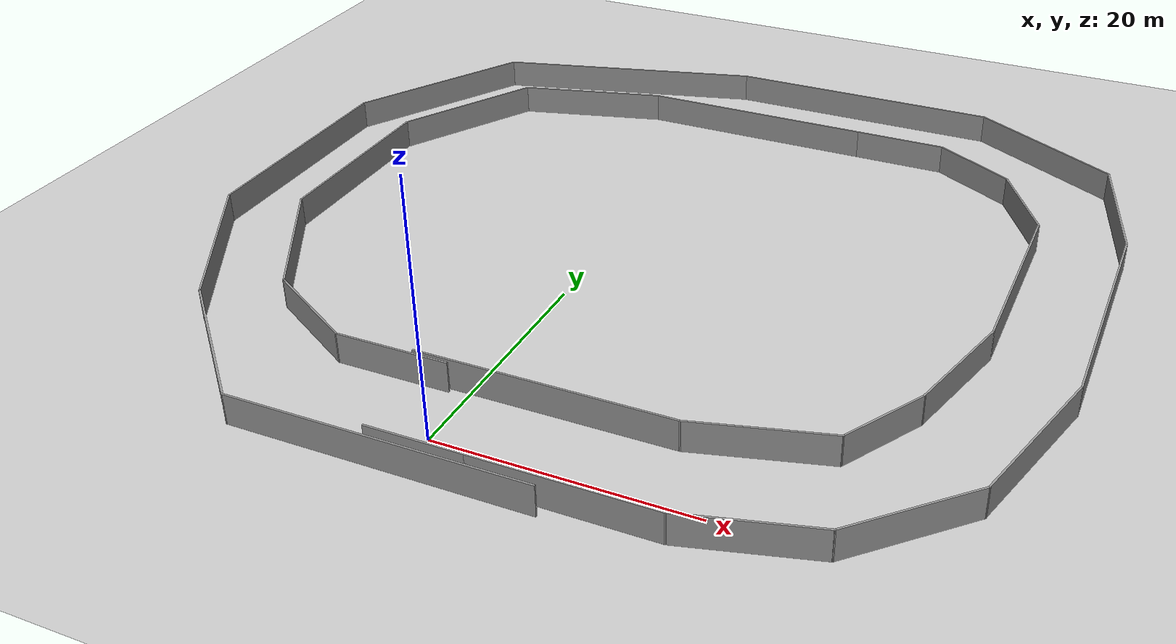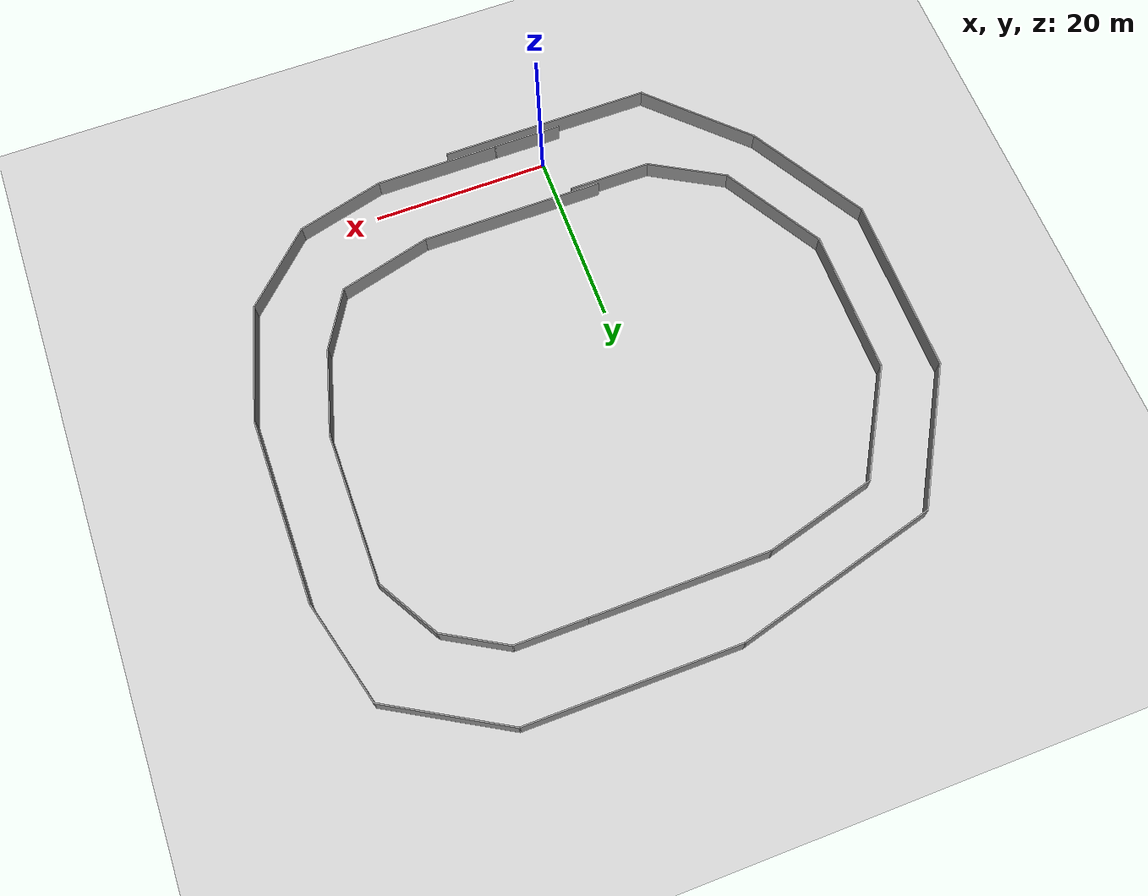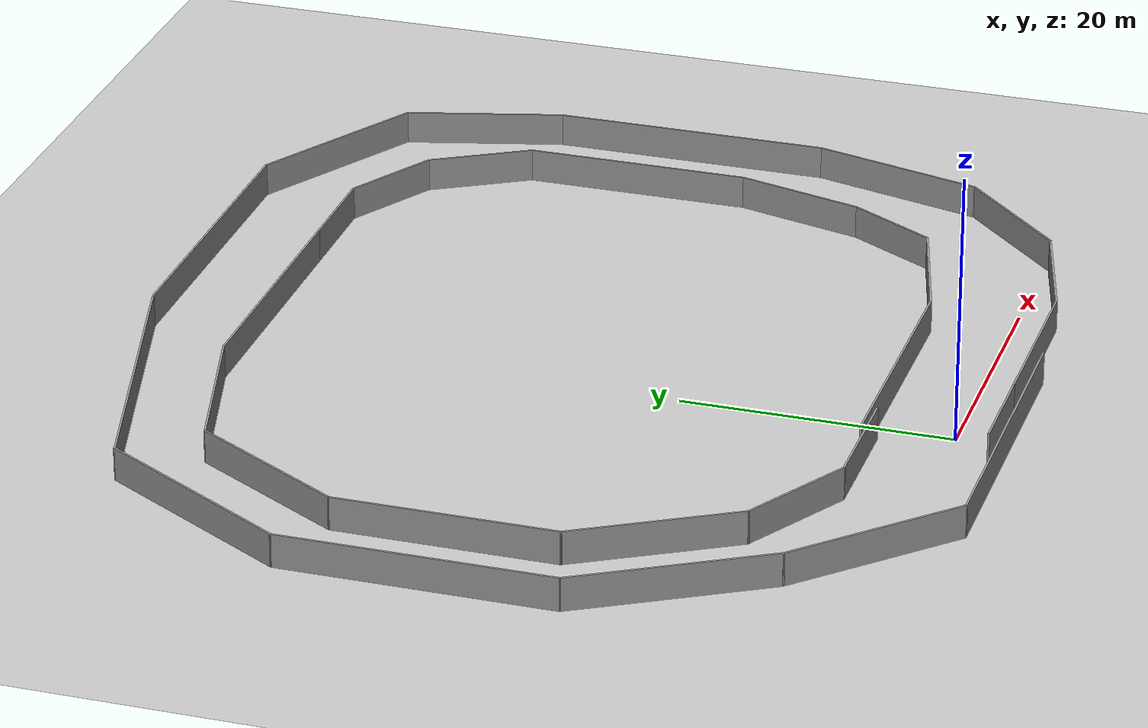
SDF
<sdf version="1.7">
 <world name="default">
  <light name="sun" type="directional">
   <pose>0 0 10 0 -0 0</pose>
   <diffuse>0.8 0.8 0.8 1</diffuse>
   <specular>0.2 0.2 0.2 1</specular>
   <attenuation>
    <range>1000</range>
    <constant>0.9</constant>
    <linear>0.01</linear>
    <quadratic>0.001</quadratic>
   </attenuation>
   <direction>-0.5 0.1 -0.9</direction>
   <spot><inner_angle>0</inner_angle><outer_angle>0</outer_angle><falloff>0</falloff></spot>
  </light>
  <model name="ground_plane">
   <static>1</static>
   <link name="link">
    <collision name="collision">
     <geometry><plane><normal>0 0 1</normal><size>100 100</size></plane></geometry>
     <surface>
      <contact><collide_bitmask>65535</collide_bitmask></contact>
      <friction><ode><mu>100</mu><mu2>50</mu2></ode></friction>
     </surface>
    </collision>
    <visual name="visual">
     <cast_shadows>0</cast_shadows>
     <geometry><plane><normal>0 0 1</normal><size>100 100</size></plane></geometry>
     <material>
      <script><uri>file://media/materials/scripts/gazebo.material</uri><name>Gazebo/Grey</name></script>
     </material>
    </visual>
   </link>
  </model>
  <gravity>0 0 -9.8</gravity>
  <magnetic_field>6e-06 2.3e-05 -4.2e-05</magnetic_field>
  <atmosphere type="adiabatic"/>
  <physics type="ode">
   <max_step_size>0.001</max_step_size>
   <real_time_factor>1</real_time_factor>
   <real_time_update_rate>1000</real_time_update_rate>
  </physics>
  <scene><ambient>0.4 0.4 0.4 1</ambient><background>0.7 0.7 0.7 1</background><shadows>1</shadows></scene>
  <spherical_coordinates>
   <surface_model>EARTH_WGS84</surface_model>
   <latitude_deg>0</latitude_deg>
   <longitude_deg>0</longitude_deg>
   <elevation>0</elevation>
   <heading_deg>0</heading_deg>
  </spherical_coordinates>
  <model name="Untitled">
   <pose>4.14361 27.9397 0 0 -0 0</pose>
   <link name="Wall_0">
    <collision name="Wall_0_Collision">
     <geometry><box><size>7.75 0.15 2.5</size></box></geometry>
     <pose>0 0 1.25 0 -0 0</pose>
    </collision>
    <visual name="Wall_0_Visual">
     <pose>0 0 1.25 0 -0 0</pose>
     <geometry><box><size>7.75 0.15 2.5</size></box></geometry>
     <material>
      <script><uri>file://media/materials/scripts/gazebo.material</uri><name>Gazebo/Grey</name></script>
      <ambient>1 1 1 1</ambient>
     </material>
     <meta><layer>0</layer></meta>
    </visual>
    <pose>-3.22361 -30.8997 0 0 -0 0</pose>
   </link>
   <link name="Wall_10">
    <collision name="Wall_10_Collision">
     <geometry><box><size>23.75 0.15 2.5</size></box></geometry>
     <pose>0 0 1.25 0 -0 0</pose>
    </collision>
    <visual name="Wall_10_Visual">
     <pose>0 0 1.25 0 -0 0</pose>
     <geometry><box><size>23.75 0.15 2.5</size></box></geometry>
     <material>
      <script><uri>file://media/materials/scripts/gazebo.material</uri><name>Gazebo/Grey</name></script>
      <ambient>1 1 1 1</ambient>
     </material>
     <meta><layer>0</layer></meta>
    </visual>
    <pose>-15.4243 28.7634 0 0 -0 -2.87979</pose>
   </link>
   <link name="Wall_11">
    <collision name="Wall_11_Collision">
     <geometry><box><size>16.75 0.15 2.5</size></box></geometry>
     <pose>0 0 1.25 0 -0 0</pose>
    </collision>
    <visual name="Wall_11_Visual">
     <pose>0 0 1.25 0 -0 0</pose>
     <geometry><box><size>16.75 0.15 2.5</size></box></geometry>
     <material>
      <script><uri>file://media/materials/scripts/gazebo.material</uri><name>Gazebo/Grey</name></script>
      <ambient>1 1 1 1</ambient>
     </material>
     <meta><layer>0</layer></meta>
    </visual>
    <pose>-30.9722 18.5213 0 0 -0 -2.0944</pose>
   </link>
   <link name="Wall_12">
    <collision name="Wall_12_Collision">
     <geometry><box><size>20.25 0.15 2.5</size></box></geometry>
     <pose>0 0 1.25 0 -0 0</pose>
    </collision>
    <visual name="Wall_12_Visual">
     <pose>0 0 1.25 0 -0 0</pose>
     <geometry><box><size>20.25 0.15 2.5</size></box></geometry>
     <material>
      <script><uri>file://media/materials/scripts/gazebo.material</uri><name>Gazebo/Grey</name></script>
      <ambient>1 1 1 1</ambient>
     </material>
     <meta><layer>0</layer></meta>
    </visual>
    <pose>-35.1222 1.28333 0 0 -0 -1.5708</pose>
   </link>
   <link name="Wall_13">
    <collision name="Wall_13_Collision">
     <geometry><box><size>15.25 0.15 2.5</size></box></geometry>
     <pose>0 0 1.25 0 -0 0</pose>
    </collision>
    <visual name="Wall_13_Visual">
     <pose>0 0 1.25 0 -0 0</pose>
     <geometry><box><size>15.25 0.15 2.5</size></box></geometry>
     <material>
      <script><uri>file://media/materials/scripts/gazebo.material</uri><name>Gazebo/Grey</name></script>
      <ambient>1 1 1 1</ambient>
     </material>
     <meta><layer>0</layer></meta>
    </visual>
    <pose>-31.3472 -15.3052 0 0 -0 -1.0472</pose>
   </link>
   <link name="Wall_14">
    <collision name="Wall_14_Collision">
     <geometry><box><size>14.25 0.15 2.5</size></box></geometry>
     <pose>0 0 1.25 0 -0 0</pose>
    </collision>
    <visual name="Wall_14_Visual">
     <pose>0 0 1.25 0 -0 0</pose>
     <geometry><box><size>14.25 0.15 2.5</size></box></geometry>
     <material>
      <script><uri>file://media/materials/scripts/gazebo.material</uri><name>Gazebo/Grey</name></script>
      <ambient>1 1 1 1</ambient>
     </material>
     <meta><layer>0</layer></meta>
    </visual>
    <pose>-22.5871 -26.8288 0 0 -0 -0.785398</pose>
   </link>
   <link name="Wall_15">
    <collision name="Wall_15_Collision">
     <geometry><box><size>23.75 0.15 2.5</size></box></geometry>
     <pose>0 0 1.25 0 -0 0</pose>
    </collision>
    <visual name="Wall_15_Visual">
     <pose>0 0 1.25 0 -0 0</pose>
     <geometry><box><size>23.75 0.15 2.5</size></box></geometry>
     <material>
      <script><uri>file://media/materials/scripts/gazebo.material</uri><name>Gazebo/Grey</name></script>
      <ambient>1 1 1 1</ambient>
     </material>
     <meta><layer>0</layer></meta>
    </visual>
    <pose>-5.80201 -31.8139 0 0 -0 0</pose>
   </link>
   <link name="Wall_17">
    <collision name="Wall_17_Collision">
     <geometry><box><size>20.5 0.15 2.5</size></box></geometry>
     <pose>0 0 1.25 0 -0 0</pose>
    </collision>
    <visual name="Wall_17_Visual">
     <pose>0 0 1.25 0 -0 0</pose>
     <geometry><box><size>20.5 0.15 2.5</size></box></geometry>
     <material>
      <script><uri>file://media/materials/scripts/gazebo.material</uri><name>Gazebo/Grey</name></script>
      <ambient>1 1 1 1</ambient>
     </material>
     <meta><layer>0</layer></meta>
    </visual>
    <pose>1.52837 -22.2322 0 0 -0 0</pose>
   </link>
   <link name="Wall_18">
    <collision name="Wall_18_Collision">
     <geometry><box><size>10.75 0.15 2.5</size></box></geometry>
     <pose>0 0 1.25 0 -0 0</pose>
    </collision>
    <visual name="Wall_18_Visual">
     <pose>0 0 1.25 0 -0 0</pose>
     <geometry><box><size>10.75 0.15 2.5</size></box></geometry>
     <material>
      <script><uri>file://media/materials/scripts/gazebo.material</uri><name>Gazebo/Grey</name></script>
      <ambient>1 1 1 1</ambient>
     </material>
     <meta><layer>0</layer></meta>
    </visual>
    <pose>16.8228 -20.8604 0 0 -0 0.261799</pose>
   </link>
   <link name="Wall_19">
    <collision name="Wall_19_Collision">
     <geometry><box><size>7.5 0.15 2.5</size></box></geometry>
     <pose>0 0 1.25 0 -0 0</pose>
    </collision>
    <visual name="Wall_19_Visual">
     <pose>0 0 1.25 0 -0 0</pose>
     <geometry><box><size>7.5 0.15 2.5</size></box></geometry>
     <material>
      <script><uri>file://media/materials/scripts/gazebo.material</uri><name>Gazebo/Grey</name></script>
      <ambient>1 1 1 1</ambient>
     </material>
     <meta><layer>0</layer></meta>
    </visual>
    <pose>23.7797 -16.306 0 0 -0 1.0472</pose>
   </link>
   <link name="Wall_2">
    <collision name="Wall_2_Collision">
     <geometry><box><size>14 0.15 2.5</size></box></geometry>
     <pose>0 0 1.25 0 -0 0</pose>
    </collision>
    <visual name="Wall_2_Visual">
     <pose>0 0 1.25 0 -0 0</pose>
     <geometry><box><size>14 0.15 2.5</size></box></geometry>
     <material>
      <script><uri>file://media/materials/scripts/gazebo.material</uri><name>Gazebo/Grey</name></script>
      <ambient>1 1 1 1</ambient>
     </material>
     <meta><layer>0</layer></meta>
    </visual>
    <pose>7.50139 -30.8997 0 0 -0 0</pose>
   </link>
   <link name="Wall_20">
    <collision name="Wall_20_Collision">
     <geometry><box><size>10 0.15 2.5</size></box></geometry>
     <pose>0 0 1.25 0 -0 0</pose>
    </collision>
    <visual name="Wall_20_Visual">
     <pose>0 0 1.25 0 -0 0</pose>
     <geometry><box><size>10 0.15 2.5</size></box></geometry>
     <material>
      <script><uri>file://media/materials/scripts/gazebo.material</uri><name>Gazebo/Grey</name></script>
      <ambient>1 1 1 1</ambient>
     </material>
     <meta><layer>0</layer></meta>
    </visual>
    <pose>26.8919 -8.36622 0 0 -0 1.309</pose>
   </link>
   <link name="Wall_21">
    <collision name="Wall_21_Collision">
     <geometry><box><size>17 0.15 2.5</size></box></geometry>
     <pose>0 0 1.25 0 -0 0</pose>
    </collision>
    <visual name="Wall_21_Visual">
     <pose>0 0 1.25 0 -0 0</pose>
     <geometry><box><size>17 0.15 2.5</size></box></geometry>
     <material>
      <script><uri>file://media/materials/scripts/gazebo.material</uri><name>Gazebo/Grey</name></script>
      <ambient>1 1 1 1</ambient>
     </material>
     <meta><layer>0</layer></meta>
    </visual>
    <pose>28.1666 4.81597 0 0 -0 1.5708</pose>
   </link>
   <link name="Wall_22">
    <collision name="Wall_22_Collision">
     <geometry><box><size>8.25 0.15 2.5</size></box></geometry>
     <pose>0 0 1.25 0 -0 0</pose>
    </collision>
    <visual name="Wall_22_Visual">
     <pose>0 0 1.25 0 -0 0</pose>
     <geometry><box><size>8.25 0.15 2.5</size></box></geometry>
     <material>
      <script><uri>file://media/materials/scripts/gazebo.material</uri><name>Gazebo/Grey</name></script>
      <ambient>1 1 1 1</ambient>
     </material>
     <meta><layer>0</layer></meta>
    </visual>
    <pose>26.1416 16.7484 0 0 -0 2.0944</pose>
   </link>
   <link name="Wall_23">
    <collision name="Wall_23_Collision">
     <geometry><box><size>7.75 0.15 2.5</size></box></geometry>
     <pose>0 0 1.25 0 -0 0</pose>
    </collision>
    <visual name="Wall_23_Visual">
     <pose>0 0 1.25 0 -0 0</pose>
     <geometry><box><size>7.75 0.15 2.5</size></box></geometry>
     <material>
      <script><uri>file://media/materials/scripts/gazebo.material</uri><name>Gazebo/Grey</name></script>
      <ambient>1 1 1 1</ambient>
     </material>
     <meta><layer>0</layer></meta>
    </visual>
    <pose>20.8257 22.1558 0 0 -0 2.61799</pose>
   </link>
   <link name="Wall_24">
    <collision name="Wall_24_Collision">
     <geometry><box><size>8 0.15 2.5</size></box></geometry>
     <pose>0 0 1.25 0 -0 0</pose>
    </collision>
    <visual name="Wall_24_Visual">
     <pose>0 0 1.25 0 -0 0</pose>
     <geometry><box><size>8 0.15 2.5</size></box></geometry>
     <material>
      <script><uri>file://media/materials/scripts/gazebo.material</uri><name>Gazebo/Grey</name></script>
      <ambient>1 1 1 1</ambient>
     </material>
     <meta><layer>0</layer></meta>
    </visual>
    <pose>13.6098 24.0558 0 0 -0 3.14159</pose>
   </link>
   <link name="Wall_25">
    <collision name="Wall_25_Collision">
     <geometry><box><size>20 0.15 2.5</size></box></geometry>
     <pose>0 0 1.25 0 -0 0</pose>
    </collision>
    <visual name="Wall_25_Visual">
     <pose>0 0 1.25 0 -0 0</pose>
     <geometry><box><size>20 0.15 2.5</size></box></geometry>
     <material>
      <script><uri>file://media/materials/scripts/gazebo.material</uri><name>Gazebo/Grey</name></script>
      <ambient>1 1 1 1</ambient>
     </material>
     <meta><layer>0</layer></meta>
    </visual>
    <pose>-0.240241 24.0558 0 0 -0 3.14159</pose>
   </link>
   <link name="Wall_26">
    <collision name="Wall_26_Collision">
     <geometry><box><size>13 0.15 2.5</size></box></geometry>
     <pose>0 0 1.25 0 -0 0</pose>
    </collision>
    <visual name="Wall_26_Visual">
     <pose>0 0 1.25 0 -0 0</pose>
     <geometry><box><size>13 0.15 2.5</size></box></geometry>
     <material>
      <script><uri>file://media/materials/scripts/gazebo.material</uri><name>Gazebo/Grey</name></script>
      <ambient>1 1 1 1</ambient>
     </material>
     <meta><layer>0</layer></meta>
    </visual>
    <pose>-16.3713 22.3929 0 0 -0 -2.87979</pose>
   </link>
   <link name="Wall_27">
    <collision name="Wall_27_Collision">
     <geometry><box><size>13.25 0.15 2.5</size></box></geometry>
     <pose>0 0 1.25 0 -0 0</pose>
    </collision>
    <visual name="Wall_27_Visual">
     <pose>0 0 1.25 0 -0 0</pose>
     <geometry><box><size>13.25 0.15 2.5</size></box></geometry>
     <material>
      <script><uri>file://media/materials/scripts/gazebo.material</uri><name>Gazebo/Grey</name></script>
      <ambient>1 1 1 1</ambient>
     </material>
     <meta><layer>0</layer></meta>
    </visual>
    <pose>-25.8524 15.0575 0 0 -0 -2.0944</pose>
   </link>
   <link name="Wall_28">
    <collision name="Wall_28_Collision">
     <geometry><box><size>16.5 0.15 2.5</size></box></geometry>
     <pose>0 0 1.25 0 -0 0</pose>
    </collision>
    <visual name="Wall_28_Visual">
     <pose>0 0 1.25 0 -0 0</pose>
     <geometry><box><size>16.5 0.15 2.5</size></box></geometry>
     <material>
      <script><uri>file://media/materials/scripts/gazebo.material</uri><name>Gazebo/Grey</name></script>
      <ambient>1 1 1 1</ambient>
     </material>
     <meta><layer>0</layer></meta>
    </visual>
    <pose>-29.1274 1.21002 0 0 -0 -1.5708</pose>
   </link>
   <link name="Wall_29">
    <collision name="Wall_29_Collision">
     <geometry><box><size>13 0.15 2.5</size></box></geometry>
     <pose>0 0 1.25 0 -0 0</pose>
    </collision>
    <visual name="Wall_29_Visual">
     <pose>0 0 1.25 0 -0 0</pose>
     <geometry><box><size>13 0.15 2.5</size></box></geometry>
     <material>
      <script><uri>file://media/materials/scripts/gazebo.material</uri><name>Gazebo/Grey</name></script>
      <ambient>1 1 1 1</ambient>
     </material>
     <meta><layer>0</layer></meta>
    </visual>
    <pose>-25.9149 -12.5292 0 0 -0 -1.0472</pose>
   </link>
   <link name="Wall_3">
    <collision name="Wall_3_Collision">
     <geometry><box><size>10.25 0.15 2.5</size></box></geometry>
     <pose>0 0 1.25 0 -0 0</pose>
    </collision>
    <visual name="Wall_3_Visual">
     <pose>0 0 1.25 0 -0 0</pose>
     <geometry><box><size>10.25 0.15 2.5</size></box></geometry>
     <material>
      <script><uri>file://media/materials/scripts/gazebo.material</uri><name>Gazebo/Grey</name></script>
      <ambient>1 1 1 1</ambient>
     </material>
     <meta><layer>0</layer></meta>
    </visual>
    <pose>19.3043 -29.5927 0 0 -0 0.261799</pose>
   </link>
   <link name="Wall_30">
    <collision name="Wall_30_Collision">
     <geometry><box><size>9.25 0.15 2.5</size></box></geometry>
     <pose>0 0 1.25 0 -0 0</pose>
    </collision>
    <visual name="Wall_30_Visual">
     <pose>0 0 1.25 0 -0 0</pose>
     <geometry><box><size>9.25 0.15 2.5</size></box></geometry>
     <material>
      <script><uri>file://media/materials/scripts/gazebo.material</uri><name>Gazebo/Grey</name></script>
      <ambient>1 1 1 1</ambient>
     </material>
     <meta><layer>0</layer></meta>
    </visual>
    <pose>-18.762 -20.3684 0 0 -0 -0.523599</pose>
   </link>
   <link name="Wall_31">
    <collision name="Wall_31_Collision">
     <geometry><box><size>9.25 0.15 2.5</size></box></geometry>
     <pose>0 0 1.25 0 -0 0</pose>
    </collision>
    <visual name="Wall_31_Visual">
     <pose>0 0 1.25 0 -0 0</pose>
     <geometry><box><size>9.25 0.15 2.5</size></box></geometry>
     <material>
      <script><uri>file://media/materials/scripts/gazebo.material</uri><name>Gazebo/Grey</name></script>
      <ambient>1 1 1 1</ambient>
     </material>
     <meta><layer>0</layer></meta>
    </visual>
    <pose>-10.2716 -22.6434 0 0 -0 0</pose>
   </link>
   <link name="Wall_4">
    <collision name="Wall_4_Collision">
     <geometry><box><size>10.75 0.15 2.5</size></box></geometry>
     <pose>0 0 1.25 0 -0 0</pose>
    </collision>
    <visual name="Wall_4_Visual">
     <pose>0 0 1.25 0 -0 0</pose>
     <geometry><box><size>10.75 0.15 2.5</size></box></geometry>
     <material>
      <script><uri>file://media/materials/scripts/gazebo.material</uri><name>Gazebo/Grey</name></script>
      <ambient>1 1 1 1</ambient>
     </material>
     <meta><layer>0</layer></meta>
    </visual>
    <pose>27.9299 -24.538 0 0 -0 0.785398</pose>
   </link>
   <link name="Wall_5">
    <collision name="Wall_5_Collision">
     <geometry><box><size>13.5 0.15 2.5</size></box></geometry>
     <pose>0 0 1.25 0 -0 0</pose>
    </collision>
    <visual name="Wall_5_Visual">
     <pose>0 0 1.25 0 -0 0</pose>
     <geometry><box><size>13.5 0.15 2.5</size></box></geometry>
     <material>
      <script><uri>file://media/materials/scripts/gazebo.material</uri><name>Gazebo/Grey</name></script>
      <ambient>1 1 1 1</ambient>
     </material>
     <meta><layer>0</layer></meta>
    </visual>
    <pose>33.4052 -14.3428 0 0 -0 1.309</pose>
   </link>
   <link name="Wall_6">
    <collision name="Wall_6_Collision">
     <geometry><box><size>21 0.15 2.5</size></box></geometry>
     <pose>0 0 1.25 0 -0 0</pose>
    </collision>
    <visual name="Wall_6_Visual">
     <pose>0 0 1.25 0 -0 0</pose>
     <geometry><box><size>21 0.15 2.5</size></box></geometry>
     <material>
      <script><uri>file://media/materials/scripts/gazebo.material</uri><name>Gazebo/Grey</name></script>
      <ambient>1 1 1 1</ambient>
     </material>
     <meta><layer>0</layer></meta>
    </visual>
    <pose>35.1328 2.52978 0 0 -0 1.5708</pose>
   </link>
   <link name="Wall_7">
    <collision name="Wall_7_Collision">
     <geometry><box><size>12.25 0.15 2.5</size></box></geometry>
     <pose>0 0 1.25 0 -0 0</pose>
    </collision>
    <visual name="Wall_7_Visual">
     <pose>0 0 1.25 0 -0 0</pose>
     <geometry><box><size>12.25 0.15 2.5</size></box></geometry>
     <material>
      <script><uri>file://media/materials/scripts/gazebo.material</uri><name>Gazebo/Grey</name></script>
      <ambient>1 1 1 1</ambient>
     </material>
     <meta><layer>0</layer></meta>
    </visual>
    <pose>33.567 18.7986 0 0 -0 1.8326</pose>
   </link>
   <link name="Wall_8">
    <collision name="Wall_8_Collision">
     <geometry><box><size>14.5 0.15 2.5</size></box></geometry>
     <pose>0 0 1.25 0 -0 0</pose>
    </collision>
    <visual name="Wall_8_Visual">
     <pose>0 0 1.25 0 -0 0</pose>
     <geometry><box><size>14.5 0.15 2.5</size></box></geometry>
     <material>
      <script><uri>file://media/materials/scripts/gazebo.material</uri><name>Gazebo/Grey</name></script>
      <ambient>1 1 1 1</ambient>
     </material>
     <meta><layer>0</layer></meta>
    </visual>
    <pose>25.7874 28.23 0 0 -0 2.61799</pose>
   </link>
   <link name="Wall_9">
    <collision name="Wall_9_Collision">
     <geometry><box><size>23.75 0.15 2.5</size></box></geometry>
     <pose>0 0 1.25 0 -0 0</pose>
    </collision>
    <visual name="Wall_9_Visual">
     <pose>0 0 1.25 0 -0 0</pose>
     <geometry><box><size>23.75 0.15 2.5</size></box></geometry>
     <material>
      <script><uri>file://media/materials/scripts/gazebo.material</uri><name>Gazebo/Grey</name></script>
      <ambient>1 1 1 1</ambient>
     </material>
     <meta><layer>0</layer></meta>
    </visual>
    <pose>7.77363 31.8175 0 0 -0 3.14159</pose>
   </link>
   <static>1</static>
  </model>
 </world>
</sdf>
